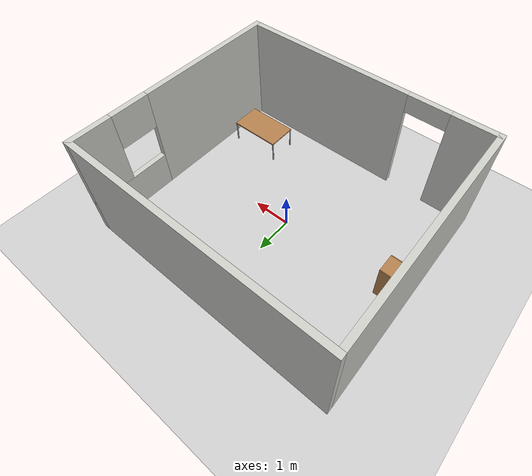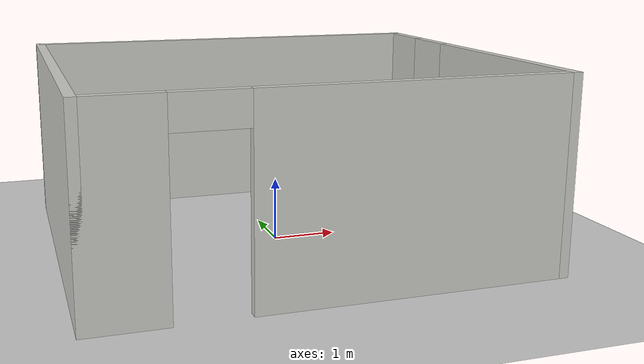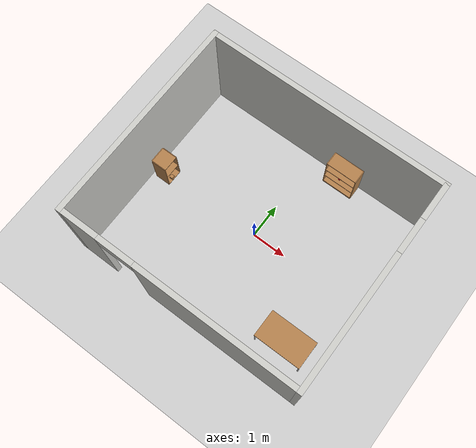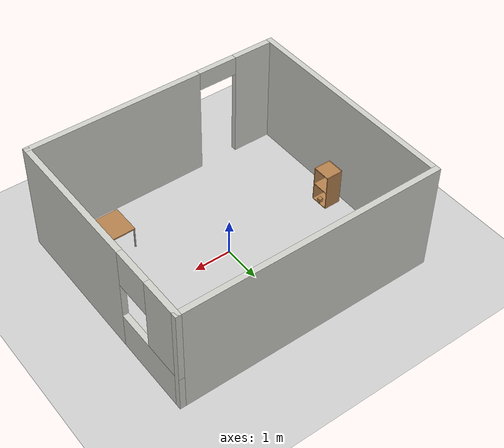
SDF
<sdf version="1.6">
 <world name="default">
  <light name="sun" type="directional">
   <pose>0 0 10 0 -0 0</pose>
   <diffuse>0.8 0.8 0.8 1</diffuse>
   <specular>0.1 0.1 0.1 1</specular>
   <attenuation>
    <range>1000</range>
    <constant>0.9</constant>
    <linear>0.01</linear>
    <quadratic>0.001</quadratic>
   </attenuation>
   <direction>-0.5 0.5 -1</direction>
  </light>
  <model name="ground_plane">
   <static>1</static>
   <link name="link">
    <collision name="collision">
     <geometry><plane><normal>0 0 1</normal><size>100 100</size></plane></geometry>
     <surface><friction><ode><mu>100</mu><mu2>50</mu2></ode></friction></surface>
    </collision>
    <visual name="visual">
     <cast_shadows>0</cast_shadows>
     <geometry><plane><normal>0 0 1</normal><size>100 100</size></plane></geometry>
     <material>
      <script><uri>file://media/materials/scripts/gazebo.material</uri><name>Gazebo/Grey</name></script>
     </material>
    </visual>
   </link>
  </model>
  <gravity>0 0 -9.8</gravity>
  <magnetic_field>6e-06 2.3e-05 -4.2e-05</magnetic_field>
  <atmosphere type="adiabatic"/>
  <physics name="default_physics" default="0" type="ode">
   <max_step_size>0.001</max_step_size>
   <real_time_factor>1</real_time_factor>
   <real_time_update_rate>1000</real_time_update_rate>
  </physics>
  <scene><ambient>0.4 0.4 0.4 1</ambient><background>0.7 0.7 0.7 1</background><shadows>1</shadows></scene>
  <spherical_coordinates>
   <surface_model>EARTH_WGS84</surface_model>
   <latitude_deg>0</latitude_deg>
   <longitude_deg>0</longitude_deg>
   <elevation>0</elevation>
   <heading_deg>0</heading_deg>
  </spherical_coordinates>
  <model name="basic_room">
   <link name="Wall_10">
    <pose>3.425 0 0 0 -0 1.5708</pose>
    <visual name="Wall_10_Visual_0">
     <pose>-1.05554 0 1.5 0 -0 0</pose>
     <geometry><box><size>3.88892 0.15 3</size></box></geometry>
     <material>
      <script><uri>file://media/materials/scripts/gazebo.material</uri><name>Gazebo/CeilingTiled</name></script>
      <ambient>1 1 1 1</ambient>
     </material>
    </visual>
    <collision name="Wall_10_Collision_0">
     <geometry><box><size>3.88892 0.15 3</size></box></geometry>
     <pose>-1.05554 0 1.5 0 -0 0</pose>
    </collision>
    <visual name="Wall_10_Visual_1">
     <pose>1.94446 0 0.5 0 -0 0</pose>
     <geometry><box><size>2.11108 0.15 1</size></box></geometry>
     <material>
      <script><uri>file://media/materials/scripts/gazebo.material</uri><name>Gazebo/CeilingTiled</name></script>
      <ambient>1 1 1 1</ambient>
     </material>
    </visual>
    <collision name="Wall_10_Collision_1">
     <geometry><box><size>2.11108 0.15 1</size></box></geometry>
     <pose>1.94446 0 0.5 0 -0 0</pose>
    </collision>
    <visual name="Wall_10_Visual_2">
     <pose>2.44446 0 2 0 -0 0</pose>
     <geometry><box><size>1.11108 0.15 2</size></box></geometry>
     <material>
      <script><uri>file://media/materials/scripts/gazebo.material</uri><name>Gazebo/CeilingTiled</name></script>
      <ambient>1 1 1 1</ambient>
     </material>
    </visual>
    <collision name="Wall_10_Collision_2">
     <geometry><box><size>1.11108 0.15 2</size></box></geometry>
     <pose>2.44446 0 2 0 -0 0</pose>
    </collision>
    <visual name="Wall_10_Visual_3">
     <pose>1.38892 0 2.5 0 -0 0</pose>
     <geometry><box><size>1 0.15 1</size></box></geometry>
     <material>
      <script><uri>file://media/materials/scripts/gazebo.material</uri><name>Gazebo/CeilingTiled</name></script>
      <ambient>1 1 1 1</ambient>
     </material>
    </visual>
    <collision name="Wall_10_Collision_3">
     <geometry><box><size>1 0.15 1</size></box></geometry>
     <pose>1.38892 0 2.5 0 -0 0</pose>
    </collision>
   </link>
   <link name="Wall_11">
    <collision name="Wall_11_Collision">
     <geometry><box><size>7 0.15 3</size></box></geometry>
     <pose>0 0 1.5 0 -0 0</pose>
    </collision>
    <visual name="Wall_11_Visual">
     <pose>0 0 1.5 0 -0 0</pose>
     <geometry><box><size>7 0.15 3</size></box></geometry>
     <material>
      <script><uri>file://media/materials/scripts/gazebo.material</uri><name>Gazebo/CeilingTiled</name></script>
      <ambient>1 1 1 1</ambient>
     </material>
    </visual>
    <pose>0 2.925 0 0 -0 3.14159</pose>
   </link>
   <link name="Wall_8">
    <collision name="Wall_8_Collision">
     <geometry><box><size>6 0.15 3</size></box></geometry>
     <pose>0 0 1.5 0 -0 0</pose>
    </collision>
    <visual name="Wall_8_Visual">
     <pose>0 0 1.5 0 -0 0</pose>
     <geometry><box><size>6 0.15 3</size></box></geometry>
     <material>
      <script><uri>file://media/materials/scripts/gazebo.material</uri><name>Gazebo/CeilingTiled</name></script>
      <ambient>1 1 1 1</ambient>
     </material>
    </visual>
    <pose>-3.425 0 0 0 0 -1.5708</pose>
   </link>
   <link name="Wall_9">
    <pose>0 -2.925 0 0 -0 0</pose>
    <visual name="Wall_9_Visual_0">
     <pose>-2.89679 0 1.5 0 -0 0</pose>
     <geometry><box><size>1.20641 0.15 3</size></box></geometry>
     <material>
      <script><uri>file://media/materials/scripts/gazebo.material</uri><name>Gazebo/CeilingTiled</name></script>
      <ambient>1 1 1 1</ambient>
     </material>
    </visual>
    <collision name="Wall_9_Collision_0">
     <geometry><box><size>1.20641 0.15 3</size></box></geometry>
     <pose>-2.89679 0 1.5 0 -0 0</pose>
    </collision>
    <visual name="Wall_9_Visual_1">
     <pose>1.13671 0 1.5 0 -0 0</pose>
     <geometry><box><size>4.72659 0.15 3</size></box></geometry>
     <material>
      <script><uri>file://media/materials/scripts/gazebo.material</uri><name>Gazebo/CeilingTiled</name></script>
      <ambient>1 1 1 1</ambient>
     </material>
    </visual>
    <collision name="Wall_9_Collision_1">
     <geometry><box><size>4.72659 0.15 3</size></box></geometry>
     <pose>1.13671 0 1.5 0 -0 0</pose>
    </collision>
    <visual name="Wall_9_Visual_2">
     <pose>-1.76009 0 2.75 0 -0 0</pose>
     <geometry><box><size>1.067 0.15 0.5</size></box></geometry>
     <material>
      <script><uri>file://media/materials/scripts/gazebo.material</uri><name>Gazebo/CeilingTiled</name></script>
      <ambient>1 1 1 1</ambient>
     </material>
    </visual>
    <collision name="Wall_9_Collision_2">
     <geometry><box><size>1.067 0.15 0.5</size></box></geometry>
     <pose>-1.76009 0 2.75 0 -0 0</pose>
    </collision>
   </link>
   <static>1</static>
  </model>
  <model name="table_short">
   <link name="link">
    <inertial>
     <inertia><ixx>1</ixx><ixy>0</ixy><ixz>0</ixz><iyy>1</iyy><iyz>0</iyz><izz>1</izz></inertia>
     <mass>1</mass>
    </inertial>
    <kinematic>1</kinematic>
    <visual name="visual1">
     <pose>0 0 0.6 0 -0 0</pose>
     <geometry><box><size>1.4 0.8 0.04</size></box></geometry>
     <material>
      <script><uri>file://media/materials/scripts/gazebo.material</uri><name>Gazebo/Wood</name></script>
      <ambient>1 1 1 1</ambient>
      <diffuse>1 1 1 1</diffuse>
      <specular>0.2 0.2 0.2 1</specular>
      <emissive>0 0 0 1</emissive>
      <shader type="vertex"><normal_map>__default__</normal_map></shader>
     </material>
    </visual>
    <visual name="front_left_leg">
     <pose>0.68 0.38 0.3 0 -0 0</pose>
     <geometry><cylinder><radius>0.02</radius><length>0.6</length></cylinder></geometry>
     <material>
      <script><uri>file://media/materials/scripts/gazebo.material</uri><name>Gazebo/Grey</name></script>
      <ambient>0.3 0.3 0.3 1</ambient>
      <diffuse>0.7 0.7 0.7 1</diffuse>
      <specular>0.01 0.01 0.01 1</specular>
      <emissive>0 0 0 1</emissive>
      <shader type="vertex"><normal_map>__default__</normal_map></shader>
     </material>
    </visual>
    <visual name="front_right_leg">
     <pose>0.68 -0.38 0.3 0 -0 0</pose>
     <geometry><cylinder><radius>0.02</radius><length>0.6</length></cylinder></geometry>
     <material>
      <script><uri>file://media/materials/scripts/gazebo.material</uri><name>Gazebo/Grey</name></script>
      <ambient>0.3 0.3 0.3 1</ambient>
      <diffuse>0.7 0.7 0.7 1</diffuse>
      <specular>0.01 0.01 0.01 1</specular>
      <emissive>0 0 0 1</emissive>
      <shader type="vertex"><normal_map>__default__</normal_map></shader>
     </material>
    </visual>
    <visual name="back_right_leg">
     <pose>-0.68 -0.38 0.3 0 -0 0</pose>
     <geometry><cylinder><radius>0.02</radius><length>0.6</length></cylinder></geometry>
     <material>
      <script><uri>file://media/materials/scripts/gazebo.material</uri><name>Gazebo/Grey</name></script>
      <ambient>0.3 0.3 0.3 1</ambient>
      <diffuse>0.7 0.7 0.7 1</diffuse>
      <specular>0.01 0.01 0.01 1</specular>
      <emissive>0 0 0 1</emissive>
      <shader type="vertex"><normal_map>__default__</normal_map></shader>
     </material>
    </visual>
    <visual name="back_left_leg">
     <pose>-0.68 0.38 0.3 0 -0 0</pose>
     <geometry><cylinder><radius>0.02</radius><length>0.6</length></cylinder></geometry>
     <material>
      <script><uri>file://media/materials/scripts/gazebo.material</uri><name>Gazebo/Grey</name></script>
      <ambient>0.3 0.3 0.3 1</ambient>
      <diffuse>0.7 0.7 0.7 1</diffuse>
      <specular>0.01 0.01 0.01 1</specular>
      <emissive>0 0 0 1</emissive>
      <shader type="vertex"><normal_map>__default__</normal_map></shader>
     </material>
    </visual>
    <collision name="front_left_leg">
     <pose>0.68 0.38 0.3 0 -0 0</pose>
     <geometry><cylinder><radius>0.02</radius><length>0.6</length></cylinder></geometry>
     <surface>
      <friction>
       <ode><mu>1</mu><mu2>1</mu2><fdir1>0 0 0</fdir1><slip1>0</slip1><slip2>0</slip2></ode>
       <torsional>
        <coefficient>1</coefficient>
        <patch_radius>0</patch_radius>
        <surface_radius>0</surface_radius>
        <use_patch_radius>1</use_patch_radius>
        <ode><slip>0</slip></ode>
       </torsional>
      </friction>
      <bounce><restitution_coefficient>0</restitution_coefficient><threshold>1e+06</threshold></bounce>
      <contact>
       <collide_without_contact>0</collide_without_contact>
       <collide_without_contact_bitmask>1</collide_without_contact_bitmask>
       <collide_bitmask>1</collide_bitmask>
       <ode>
        <soft_cfm>0</soft_cfm>
        <soft_erp>0.2</soft_erp>
        <kp>1e+13</kp>
        <kd>1</kd>
        <max_vel>0.01</max_vel>
        <min_depth>0</min_depth>
       </ode>
       <bullet>
        <split_impulse>1</split_impulse>
        <split_impulse_penetration_threshold>-0.01</split_impulse_penetration_threshold>
        <soft_cfm>0</soft_cfm>
        <soft_erp>0.2</soft_erp>
        <kp>1e+13</kp>
        <kd>1</kd>
       </bullet>
      </contact>
     </surface>
    </collision>
    <collision name="surface">
     <pose>0 0 0.6 0 -0 0</pose>
     <geometry><box><size>1.5 0.8 0.03</size></box></geometry>
     <surface>
      <friction>
       <ode><mu>0.6</mu><mu2>0.6</mu2><fdir1>0 0 0</fdir1><slip1>0</slip1><slip2>0</slip2></ode>
       <torsional>
        <coefficient>1</coefficient>
        <patch_radius>0</patch_radius>
        <surface_radius>0</surface_radius>
        <use_patch_radius>1</use_patch_radius>
        <ode><slip>0</slip></ode>
       </torsional>
      </friction>
      <bounce><restitution_coefficient>0</restitution_coefficient><threshold>1e+06</threshold></bounce>
      <contact>
       <collide_without_contact>0</collide_without_contact>
       <collide_without_contact_bitmask>1</collide_without_contact_bitmask>
       <collide_bitmask>1</collide_bitmask>
       <ode>
        <soft_cfm>0</soft_cfm>
        <soft_erp>0.2</soft_erp>
        <kp>1e+13</kp>
        <kd>1</kd>
        <max_vel>0.01</max_vel>
        <min_depth>0</min_depth>
       </ode>
       <bullet>
        <split_impulse>1</split_impulse>
        <split_impulse_penetration_threshold>-0.01</split_impulse_penetration_threshold>
        <soft_cfm>0</soft_cfm>
        <soft_erp>0.2</soft_erp>
        <kp>1e+13</kp>
        <kd>1</kd>
       </bullet>
      </contact>
     </surface>
    </collision>
    <collision name="back_right_leg">
     <pose>-0.68 -0.38 0.3 0 -0 0</pose>
     <geometry><cylinder><radius>0.02</radius><length>0.6</length></cylinder></geometry>
     <surface>
      <friction>
       <ode><mu>1</mu><mu2>1</mu2><fdir1>0 0 0</fdir1><slip1>0</slip1><slip2>0</slip2></ode>
       <torsional>
        <coefficient>1</coefficient>
        <patch_radius>0</patch_radius>
        <surface_radius>0</surface_radius>
        <use_patch_radius>1</use_patch_radius>
        <ode><slip>0</slip></ode>
       </torsional>
      </friction>
      <bounce><restitution_coefficient>0</restitution_coefficient><threshold>1e+06</threshold></bounce>
      <contact>
       <collide_without_contact>0</collide_without_contact>
       <collide_without_contact_bitmask>1</collide_without_contact_bitmask>
       <collide_bitmask>1</collide_bitmask>
       <ode>
        <soft_cfm>0</soft_cfm>
        <soft_erp>0.2</soft_erp>
        <kp>1e+13</kp>
        <kd>1</kd>
        <max_vel>0.01</max_vel>
        <min_depth>0</min_depth>
       </ode>
       <bullet>
        <split_impulse>1</split_impulse>
        <split_impulse_penetration_threshold>-0.01</split_impulse_penetration_threshold>
        <soft_cfm>0</soft_cfm>
        <soft_erp>0.2</soft_erp>
        <kp>1e+13</kp>
        <kd>1</kd>
       </bullet>
      </contact>
     </surface>
    </collision>
    <collision name="back_left_leg">
     <pose>-0.68 0.38 0.3 0 -0 0</pose>
     <geometry><cylinder><radius>0.02</radius><length>0.6</length></cylinder></geometry>
     <surface>
      <friction>
       <ode><mu>1</mu><mu2>1</mu2><fdir1>0 0 0</fdir1><slip1>0</slip1><slip2>0</slip2></ode>
       <torsional>
        <coefficient>1</coefficient>
        <patch_radius>0</patch_radius>
        <surface_radius>0</surface_radius>
        <use_patch_radius>1</use_patch_radius>
        <ode><slip>0</slip></ode>
       </torsional>
      </friction>
      <bounce><restitution_coefficient>0</restitution_coefficient><threshold>1e+06</threshold></bounce>
      <contact>
       <collide_without_contact>0</collide_without_contact>
       <collide_without_contact_bitmask>1</collide_without_contact_bitmask>
       <collide_bitmask>1</collide_bitmask>
       <ode>
        <soft_cfm>0</soft_cfm>
        <soft_erp>0.2</soft_erp>
        <kp>1e+13</kp>
        <kd>1</kd>
        <max_vel>0.01</max_vel>
        <min_depth>0</min_depth>
       </ode>
       <bullet>
        <split_impulse>1</split_impulse>
        <split_impulse_penetration_threshold>-0.01</split_impulse_penetration_threshold>
        <soft_cfm>0</soft_cfm>
        <soft_erp>0.2</soft_erp>
        <kp>1e+13</kp>
        <kd>1</kd>
       </bullet>
      </contact>
     </surface>
    </collision>
    <collision name="front_right_leg">
     <pose>0.68 -0.38 0.3 0 -0 0</pose>
     <geometry><cylinder><radius>0.02</radius><length>0.6</length></cylinder></geometry>
     <surface>
      <friction>
       <ode><mu>1</mu><mu2>1</mu2><fdir1>0 0 0</fdir1><slip1>0</slip1><slip2>0</slip2></ode>
       <torsional>
        <coefficient>1</coefficient>
        <patch_radius>0</patch_radius>
        <surface_radius>0</surface_radius>
        <use_patch_radius>1</use_patch_radius>
        <ode><slip>0</slip></ode>
       </torsional>
      </friction>
      <bounce><restitution_coefficient>0</restitution_coefficient><threshold>1e+06</threshold></bounce>
      <contact>
       <collide_without_contact>0</collide_without_contact>
       <collide_without_contact_bitmask>1</collide_without_contact_bitmask>
       <collide_bitmask>1</collide_bitmask>
       <ode>
        <soft_cfm>0</soft_cfm>
        <soft_erp>0.2</soft_erp>
        <kp>1e+13</kp>
        <kd>1</kd>
        <max_vel>0.01</max_vel>
        <min_depth>0</min_depth>
       </ode>
       <bullet>
        <split_impulse>1</split_impulse>
        <split_impulse_penetration_threshold>-0.01</split_impulse_penetration_threshold>
        <soft_cfm>0</soft_cfm>
        <soft_erp>0.2</soft_erp>
        <kp>1e+13</kp>
        <kd>1</kd>
       </bullet>
      </contact>
     </surface>
    </collision>
   </link>
   <static>0</static>
   <pose>2.38475 -1.87037 -0.001626 -6.7e-05 -0.000134 0</pose>
  </model>
  <model name="bookshelf">
   <static>1</static>
   <link name="link">
    <inertial><mass>1</mass></inertial>
    <collision name="back">
     <pose>0 0.005 0.6 0 -0 0</pose>
     <geometry><box><size>0.9 0.01 1.2</size></box></geometry>
    </collision>
    <visual name="visual1">
     <pose>0 0.005 0.6 0 -0 0</pose>
     <geometry><box><size>0.9 0.01 1.2</size></box></geometry>
     <material>
      <script><uri>file://media/materials/scripts/gazebo.material</uri><name>Gazebo/Wood</name></script>
     </material>
    </visual>
    <collision name="left_side">
     <pose>0.45 -0.195 0.6 0 -0 0</pose>
     <geometry><box><size>0.02 0.4 1.2</size></box></geometry>
    </collision>
    <visual name="visual2">
     <pose>0.45 -0.195 0.6 0 -0 0</pose>
     <geometry><box><size>0.02 0.4 1.2</size></box></geometry>
     <material>
      <script><uri>file://media/materials/scripts/gazebo.material</uri><name>Gazebo/Wood</name></script>
     </material>
    </visual>
    <collision name="right_side">
     <pose>-0.45 -0.195 0.6 0 -0 0</pose>
     <geometry><box><size>0.02 0.4 1.2</size></box></geometry>
    </collision>
    <visual name="visual3">
     <pose>-0.45 -0.195 0.6 0 -0 0</pose>
     <geometry><box><size>0.02 0.4 1.2</size></box></geometry>
     <material>
      <script><uri>file://media/materials/scripts/gazebo.material</uri><name>Gazebo/Wood</name></script>
     </material>
    </visual>
    <collision name="bottom">
     <pose>0 -0.195 0.03 0 -0 0</pose>
     <geometry><box><size>0.88 0.4 0.06</size></box></geometry>
    </collision>
    <visual name="visual4">
     <pose>0 -0.195 0.03 0 -0 0</pose>
     <geometry><box><size>0.88 0.4 0.06</size></box></geometry>
     <material>
      <script><uri>file://media/materials/scripts/gazebo.material</uri><name>Gazebo/Wood</name></script>
     </material>
    </visual>
    <collision name="top">
     <pose>0 -0.195 1.19 0 -0 0</pose>
     <geometry><box><size>0.88 0.4 0.02</size></box></geometry>
    </collision>
    <visual name="visual5">
     <pose>0 -0.195 1.19 0 -0 0</pose>
     <geometry><box><size>0.88 0.4 0.02</size></box></geometry>
     <material>
      <script><uri>file://media/materials/scripts/gazebo.material</uri><name>Gazebo/Wood</name></script>
     </material>
    </visual>
    <collision name="low_shelf">
     <pose>0 -0.195 0.43 0 -0 0</pose>
     <geometry><box><size>0.88 0.4 0.02</size></box></geometry>
    </collision>
    <visual name="visual6">
     <pose>0 -0.195 0.43 0 -0 0</pose>
     <geometry><box><size>0.88 0.4 0.02</size></box></geometry>
     <material>
      <script><uri>file://media/materials/scripts/gazebo.material</uri><name>Gazebo/Wood</name></script>
     </material>
    </visual>
    <collision name="high_shelf">
     <pose>0 -0.195 0.8 0 -0 0</pose>
     <geometry><box><size>0.88 0.4 0.02</size></box></geometry>
    </collision>
    <visual name="visual7">
     <pose>0 -0.195 0.8 0 -0 0</pose>
     <geometry><box><size>0.88 0.4 0.02</size></box></geometry>
     <material>
      <script><uri>file://media/materials/scripts/gazebo.material</uri><name>Gazebo/Wood</name></script>
     </material>
    </visual>
   </link>
   <pose>1.03537 2.81507 0 0 -0 0</pose>
  </model>
  <model name="cabinet">
   <static>1</static>
   <link name="cabinet_bottom_plate">
    <inertial>
     <pose>0 0 -1 0 -0 0</pose>
     <inertia><ixx>2.05</ixx><ixy>0</ixy><ixz>0</ixz><iyy>2.05</iyy><iyz>0</iyz><izz>2.05</izz></inertia>
     <mass>25</mass>
    </inertial>
    <collision name="cabinet_bottom_plate_geom">
     <pose>0 0 0.01 0 -0 0</pose>
     <geometry><box><size>0.45 0.45 0.02</size></box></geometry>
    </collision>
    <visual name="cabinet_bottom_plate_geom_visual">
     <pose>0 0 0.01 0 -0 0</pose>
     <geometry><box><size>0.45 0.45 0.02</size></box></geometry>
     <material>
      <script><uri>file://media/materials/scripts/gazebo.material</uri><name>Gazebo/Wood</name></script>
     </material>
    </visual>
    <collision name="cabinet_bottom_plate_geom_cabinet_back_plate">
     <pose>0.235 0 0.51 0 -0 0</pose>
     <geometry><box><size>0.02 0.45 1.02</size></box></geometry>
    </collision>
    <visual name="cabinet_bottom_plate_geom_cabinet_back_plate_visual">
     <pose>0.235 0 0.51 0 -0 0</pose>
     <geometry><box><size>0.02 0.45 1.02</size></box></geometry>
     <material>
      <script><uri>file://media/materials/scripts/gazebo.material</uri><name>Gazebo/Wood</name></script>
     </material>
    </visual>
    <collision name="cabinet_bottom_plate_geom_cabinet_left_plate">
     <pose>0 0.235 0.51 0 -0 0</pose>
     <geometry><box><size>0.45 0.02 1.02</size></box></geometry>
    </collision>
    <visual name="cabinet_bottom_plate_geom_cabinet_left_plate_visual">
     <pose>0 0.235 0.51 0 -0 0</pose>
     <geometry><box><size>0.45 0.02 1.02</size></box></geometry>
     <material>
      <script><uri>file://media/materials/scripts/gazebo.material</uri><name>Gazebo/Wood</name></script>
     </material>
    </visual>
    <collision name="cabinet_bottom_plate_geom_cabinet_middle_plate">
     <pose>0 0 0.51 0 -0 0</pose>
     <geometry><box><size>0.45 0.45 0.02</size></box></geometry>
    </collision>
    <visual name="cabinet_bottom_plate_geom_cabinet_middle_plate_visual">
     <pose>0 0 0.51 0 -0 0</pose>
     <geometry><box><size>0.45 0.45 0.02</size></box></geometry>
     <material>
      <script><uri>file://media/materials/scripts/gazebo.material</uri><name>Gazebo/Wood</name></script>
     </material>
    </visual>
    <collision name="cabinet_bottom_plate_geom_cabinet_right_plate">
     <pose>0 -0.235 0.51 0 -0 0</pose>
     <geometry><box><size>0.45 0.02 1.02</size></box></geometry>
    </collision>
    <visual name="cabinet_bottom_plate_geom_cabinet_right_plate_visual">
     <pose>0 -0.235 0.51 0 -0 0</pose>
     <geometry><box><size>0.45 0.02 1.02</size></box></geometry>
     <material>
      <script><uri>file://media/materials/scripts/gazebo.material</uri><name>Gazebo/Wood</name></script>
     </material>
    </visual>
    <collision name="cabinet_bottom_plate_geom_cabinet_top_plate">
     <pose>0 0 1.01 0 -0 0</pose>
     <geometry><box><size>0.45 0.45 0.02</size></box></geometry>
    </collision>
    <visual name="cabinet_bottom_plate_geom_cabinet_top_plate_visual">
     <pose>0 0 1.01 0 -0 0</pose>
     <geometry><box><size>0.45 0.45 0.02</size></box></geometry>
     <material>
      <script><uri>file://media/materials/scripts/gazebo.material</uri><name>Gazebo/Wood</name></script>
     </material>
    </visual>
   </link>
   <pose>-3 0 0 0 0 -3.14159</pose>
  </model>
  <model name="depth_camera">
   <link name="link">
    <pose>0 0 0.05 0 -0 0</pose>
    <inertial>
     <mass>0.1</mass>
     <inertia>
      <ixx>0.000166667</ixx>
      <iyy>0.000166667</iyy>
      <izz>0.000166667</izz>
      <ixy>0</ixy>
      <ixz>0</ixz>
      <iyz>0</iyz>
     </inertia>
    </inertial>
    <collision name="collision"><geometry><box><size>0.1 0.1 0.1</size></box></geometry></collision>
    <visual name="visual"><geometry><box><size>0.1 0.1 0.1</size></box></geometry></visual>
    <sensor name="camera" type="depth">
     <camera name="__default__">
      <horizontal_fov>1.047</horizontal_fov>
      <image><width>320</width><height>240</height></image>
      <clip><near>0.1</near><far>100</far></clip>
     </camera>
     <always_on>1</always_on>
     <update_rate>30</update_rate>
     <visualize>1</visualize>
    </sensor>
   </link>
   <pose>1.2682 2.65326 0.44 0 0 -9.3e-05</pose>
  </model>
  <model name="cricket_ball">
   <link name="link">
    <pose>0 0 0.0375 0 -0 0</pose>
    <inertial>
     <mass>0.1467</mass>
     <inertia>
      <ixx>8.25187e-05</ixx>
      <ixy>0</ixy>
      <ixz>0</ixz>
      <iyy>8.25187e-05</iyy>
      <iyz>0</iyz>
      <izz>8.25187e-05</izz>
     </inertia>
    </inertial>
    <collision name="collision">
     <geometry><sphere><radius>0.0375</radius></sphere></geometry>
     <surface>
      <contact>
       <poissons_ratio>0.347</poissons_ratio>
       <elastic_modulus>8.8e+09</elastic_modulus>
       <ode><kp>100000</kp><kd>100</kd><max_vel>100</max_vel><min_depth>0.001</min_depth></ode>
      </contact>
      <friction>
       <torsional>
        <coefficient>1</coefficient>
        <use_patch_radius>0</use_patch_radius>
        <surface_radius>0.01</surface_radius>
       </torsional>
      </friction>
     </surface>
    </collision>
    <visual name="visual">
     <geometry><sphere><radius>0.0375</radius></sphere></geometry>
     <material>
      <script><uri>file://media/materials/scripts/gazebo.material</uri><name>Gazebo/Red</name></script>
     </material>
    </visual>
    <velocity_decay><linear>0</linear><angular>0.005</angular></velocity_decay>
   </link>
   <pose>1 2.55244 0.438986 0 -0 0</pose>
  </model>
  <model name="wood_cube_10cm">
   <link name="link">
    <pose>0 0 0.05 0 -0 0</pose>
    <inertial>
     <mass>0.5167</mass>
     <inertia>
      <ixx>0.000861167</ixx>
      <ixy>0</ixy>
      <ixz>0</ixz>
      <iyy>0.000861167</iyy>
      <iyz>0</iyz>
      <izz>0.000861167</izz>
     </inertia>
    </inertial>
    <collision name="collision">
     <geometry><box><size>0.1 0.1 0.1</size></box></geometry>
     <surface>
      <contact>
       <poissons_ratio>0.347</poissons_ratio>
       <elastic_modulus>8.8e+09</elastic_modulus>
       <ode><kp>100000</kp><kd>100</kd><max_vel>100</max_vel><min_depth>0.001</min_depth></ode>
      </contact>
      <friction>
       <torsional>
        <coefficient>1</coefficient>
        <use_patch_radius>0</use_patch_radius>
        <surface_radius>0.01</surface_radius>
       </torsional>
      </friction>
     </surface>
    </collision>
    <visual name="visual">
     <geometry><box><size>0.1 0.1 0.1</size></box></geometry>
     <material>
      <script><uri>file://media/materials/scripts/gazebo.material</uri><name>Gazebo/Wood</name></script>
     </material>
    </visual>
   </link>
   <pose>-2.78797 -0.031779 0.068987 -1.77722 -1.57079 1.79303</pose>
  </model>
 </world>
</sdf>
